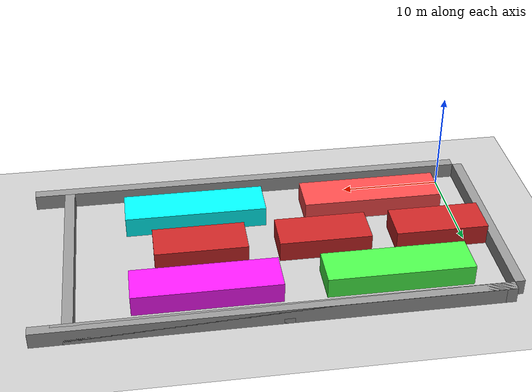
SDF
<sdf version="1.6">
 <world name="default">
  <light name="sun" type="directional">
   <pose>0 0 10 0 -0 0</pose>
   <diffuse>0.8 0.8 0.8 1</diffuse>
   <specular>0.1 0.1 0.1 1</specular>
   <attenuation>
    <range>1000</range>
    <constant>0.9</constant>
    <linear>0.01</linear>
    <quadratic>0.001</quadratic>
   </attenuation>
   <direction>-0.5 0.5 -1</direction>
  </light>
  <model name="ground_plane">
   <static>1</static>
   <link name="link">
    <collision name="collision">
     <geometry><plane><normal>0 0 1</normal><size>100 100</size></plane></geometry>
     <surface><friction><ode><mu>100</mu><mu2>50</mu2></ode></friction></surface>
    </collision>
    <visual name="visual">
     <cast_shadows>0</cast_shadows>
     <geometry><plane><normal>0 0 1</normal><size>100 100</size></plane></geometry>
     <material>
      <script><uri>file://media/materials/scripts/gazebo.material</uri><name>Gazebo/Grey</name></script>
     </material>
    </visual>
   </link>
  </model>
  <gravity>0 0 -9.8</gravity>
  <magnetic_field>6e-06 2.3e-05 -4.2e-05</magnetic_field>
  <atmosphere type="adiabatic"/>
  <physics name="default_physics" default="0" type="ode">
   <max_step_size>0.001</max_step_size>
   <real_time_factor>1</real_time_factor>
   <real_time_update_rate>1000</real_time_update_rate>
  </physics>
  <scene><ambient>0.4 0.4 0.4 1</ambient><background>0.7 0.7 0.7 1</background><shadows>1</shadows></scene>
  <spherical_coordinates>
   <surface_model>EARTH_WGS84</surface_model>
   <latitude_deg>0</latitude_deg>
   <longitude_deg>0</longitude_deg>
   <elevation>0</elevation>
   <heading_deg>0</heading_deg>
  </spherical_coordinates>
  <model name="garage_ver2_0">
   <link name="link_0">
    <pose>0 10.5 0 0 -0 0</pose>
    <inertial>
     <mass>1</mass>
     <inertia>
      <ixx>0.166667</ixx>
      <ixy>0</ixy>
      <ixz>0</ixz>
      <iyy>0.166667</iyy>
      <iyz>0</iyz>
      <izz>0.166667</izz>
     </inertia>
    </inertial>
    <kinematic>1</kinematic>
    <visual name="ModelPreview_1::link_0::visual_1">
     <geometry><box><size>1 1 1</size></box></geometry>
     <material>
      <lighting>1</lighting>
      <script><uri>file://media/materials/scripts/gazebo.material</uri><name>Gazebo/Grey</name></script>
      <ambient>0.3 0.3 0.3 1</ambient>
      <diffuse>0.7 0.7 0.7 1</diffuse>
      <specular>0.01 0.01 0.01 1</specular>
      <emissive>0 0 0 1</emissive>
      <shader type="vertex"><normal_map>__default__</normal_map></shader>
     </material>
    </visual>
    <visual name="ModelPreview_1::link_0::visual_2">
     <geometry><box><size>40 1 1</size></box></geometry>
     <material>
      <lighting>1</lighting>
      <script><uri>file://media/materials/scripts/gazebo.material</uri><name>Gazebo/Grey</name></script>
      <ambient>0.3 0.3 0.3 1</ambient>
      <diffuse>0.7 0.7 0.7 1</diffuse>
      <specular>0.01 0.01 0.01 1</specular>
      <emissive>0 0 0 1</emissive>
      <shader type="vertex"><normal_map>__default__</normal_map></shader>
     </material>
    </visual>
    <visual name="ModelPreview_1::link_0::visual_3">
     <geometry><box><size>40 1 2.97</size></box></geometry>
     <material>
      <lighting>1</lighting>
      <script><uri>file://media/materials/scripts/gazebo.material</uri><name>Gazebo/Grey</name></script>
      <ambient>0.3 0.3 0.3 1</ambient>
      <diffuse>0.7 0.7 0.7 1</diffuse>
      <specular>0.01 0.01 0.01 1</specular>
      <emissive>0 0 0 1</emissive>
      <shader type="vertex"><normal_map>__default__</normal_map></shader>
     </material>
    </visual>
    <visual name="visual">
     <geometry><box><size>42 1 3</size></box></geometry>
     <material>
      <lighting>1</lighting>
      <script><uri>file://media/materials/scripts/gazebo.material</uri><name>Gazebo/Grey</name></script>
      <ambient>0.3 0.3 0.3 1</ambient>
      <diffuse>0.7 0.7 0.7 1</diffuse>
      <specular>0.01 0.01 0.01 1</specular>
      <emissive>0 0 0 1</emissive>
      <shader type="vertex"><normal_map>__default__</normal_map></shader>
     </material>
    </visual>
    <collision name="collision">
     <geometry><box><size>42 1 3</size></box></geometry>
     <surface>
      <friction>
       <ode><mu>1</mu><mu2>1</mu2><fdir1>0 0 0</fdir1><slip1>0</slip1><slip2>0</slip2></ode>
       <torsional>
        <coefficient>1</coefficient>
        <patch_radius>0</patch_radius>
        <surface_radius>0</surface_radius>
        <use_patch_radius>1</use_patch_radius>
        <ode><slip>0</slip></ode>
       </torsional>
      </friction>
      <bounce><restitution_coefficient>0</restitution_coefficient><threshold>1e+06</threshold></bounce>
      <contact>
       <collide_without_contact>0</collide_without_contact>
       <collide_without_contact_bitmask>1</collide_without_contact_bitmask>
       <collide_bitmask>1</collide_bitmask>
       <ode>
        <soft_cfm>0</soft_cfm>
        <soft_erp>0.2</soft_erp>
        <kp>1e+13</kp>
        <kd>1</kd>
        <max_vel>0.01</max_vel>
        <min_depth>0</min_depth>
       </ode>
       <bullet>
        <split_impulse>1</split_impulse>
        <split_impulse_penetration_threshold>-0.01</split_impulse_penetration_threshold>
        <soft_cfm>0</soft_cfm>
        <soft_erp>0.2</soft_erp>
        <kp>1e+13</kp>
        <kd>1</kd>
       </bullet>
      </contact>
     </surface>
    </collision>
   </link>
   <link name="link_0_clone">
    <pose>1 10.5 0 0 -0 0</pose>
    <inertial>
     <mass>1</mass>
     <inertia>
      <ixx>0.166667</ixx>
      <ixy>0</ixy>
      <ixz>0</ixz>
      <iyy>0.166667</iyy>
      <iyz>0</iyz>
      <izz>0.166667</izz>
     </inertia>
    </inertial>
    <kinematic>1</kinematic>
    <visual name="visual">
     <geometry><box><size>44 1 3</size></box></geometry>
     <material>
      <lighting>1</lighting>
      <script><uri>file://media/materials/scripts/gazebo.material</uri><name>Gazebo/Grey</name></script>
      <ambient>0.3 0.3 0.3 1</ambient>
      <diffuse>0.7 0.7 0.7 1</diffuse>
      <specular>0.01 0.01 0.01 1</specular>
      <emissive>0 0 0 1</emissive>
      <shader type="vertex"><normal_map>__default__</normal_map></shader>
     </material>
    </visual>
    <collision name="collision">
     <geometry><box><size>44 1 3</size></box></geometry>
     <surface>
      <friction>
       <ode><mu>1</mu><mu2>1</mu2><fdir1>0 0 0</fdir1><slip1>0</slip1><slip2>0</slip2></ode>
       <torsional>
        <coefficient>1</coefficient>
        <patch_radius>0</patch_radius>
        <surface_radius>0</surface_radius>
        <use_patch_radius>1</use_patch_radius>
        <ode><slip>0</slip></ode>
       </torsional>
      </friction>
      <bounce><restitution_coefficient>0</restitution_coefficient><threshold>1e+06</threshold></bounce>
      <contact>
       <collide_without_contact>0</collide_without_contact>
       <collide_without_contact_bitmask>1</collide_without_contact_bitmask>
       <collide_bitmask>1</collide_bitmask>
       <ode>
        <soft_cfm>0</soft_cfm>
        <soft_erp>0.2</soft_erp>
        <kp>1e+13</kp>
        <kd>1</kd>
        <max_vel>0.01</max_vel>
        <min_depth>0</min_depth>
       </ode>
       <bullet>
        <split_impulse>1</split_impulse>
        <split_impulse_penetration_threshold>-0.01</split_impulse_penetration_threshold>
        <soft_cfm>0</soft_cfm>
        <soft_erp>0.2</soft_erp>
        <kp>1e+13</kp>
        <kd>1</kd>
       </bullet>
      </contact>
     </surface>
    </collision>
   </link>
   <link name="link_0_clone_clone">
    <pose>1 -10.5 0 0 -0 0</pose>
    <inertial>
     <mass>1</mass>
     <inertia>
      <ixx>0.166667</ixx>
      <ixy>0</ixy>
      <ixz>0</ixz>
      <iyy>0.166667</iyy>
      <iyz>0</iyz>
      <izz>0.166667</izz>
     </inertia>
    </inertial>
    <kinematic>1</kinematic>
    <visual name="visual">
     <geometry><box><size>44 1 3</size></box></geometry>
     <material>
      <lighting>1</lighting>
      <script><uri>file://media/materials/scripts/gazebo.material</uri><name>Gazebo/Grey</name></script>
      <ambient>0.3 0.3 0.3 1</ambient>
      <diffuse>0.7 0.7 0.7 1</diffuse>
      <specular>0.01 0.01 0.01 1</specular>
      <emissive>0 0 0 1</emissive>
      <shader type="vertex"><normal_map>__default__</normal_map></shader>
     </material>
    </visual>
    <collision name="collision">
     <geometry><box><size>44 1 3</size></box></geometry>
     <surface>
      <friction>
       <ode><mu>1</mu><mu2>1</mu2><fdir1>0 0 0</fdir1><slip1>0</slip1><slip2>0</slip2></ode>
       <torsional>
        <coefficient>1</coefficient>
        <patch_radius>0</patch_radius>
        <surface_radius>0</surface_radius>
        <use_patch_radius>1</use_patch_radius>
        <ode><slip>0</slip></ode>
       </torsional>
      </friction>
      <bounce><restitution_coefficient>0</restitution_coefficient><threshold>1e+06</threshold></bounce>
      <contact>
       <collide_without_contact>0</collide_without_contact>
       <collide_without_contact_bitmask>1</collide_without_contact_bitmask>
       <collide_bitmask>1</collide_bitmask>
       <ode>
        <soft_cfm>0</soft_cfm>
        <soft_erp>0.2</soft_erp>
        <kp>1e+13</kp>
        <kd>1</kd>
        <max_vel>0.01</max_vel>
        <min_depth>0</min_depth>
       </ode>
       <bullet>
        <split_impulse>1</split_impulse>
        <split_impulse_penetration_threshold>-0.01</split_impulse_penetration_threshold>
        <soft_cfm>0</soft_cfm>
        <soft_erp>0.2</soft_erp>
        <kp>1e+13</kp>
        <kd>1</kd>
       </bullet>
      </contact>
     </surface>
    </collision>
   </link>
   <link name="link_1_clone_1_clone">
    <pose>-16.5 0 0.5 0 -0 0</pose>
    <inertial>
     <mass>1</mass>
     <inertia>
      <ixx>0.166667</ixx>
      <ixy>0</ixy>
      <ixz>0</ixz>
      <iyy>0.166667</iyy>
      <iyz>0</iyz>
      <izz>0.166667</izz>
     </inertia>
    </inertial>
    <kinematic>1</kinematic>
    <visual name="visual">
     <geometry><box><size>9.09 4 3</size></box></geometry>
     <material>
      <lighting>1</lighting>
      <script><uri>file://media/materials/scripts/gazebo.material</uri><name>Gazebo/Red</name></script>
      <ambient>0 0.3 0 1</ambient>
      <diffuse>0.7 0.7 0.7 1</diffuse>
      <specular>0.01 0.01 0.01 1</specular>
      <emissive>0 0 0 1</emissive>
      <shader type="vertex"><normal_map>__default__</normal_map></shader>
     </material>
    </visual>
    <collision name="collision">
     <geometry><box><size>9 4 3</size></box></geometry>
     <surface>
      <friction>
       <ode><mu>1</mu><mu2>1</mu2><fdir1>0 0 0</fdir1><slip1>0</slip1><slip2>0</slip2></ode>
       <torsional>
        <coefficient>1</coefficient>
        <patch_radius>0</patch_radius>
        <surface_radius>0</surface_radius>
        <use_patch_radius>1</use_patch_radius>
        <ode><slip>0</slip></ode>
       </torsional>
      </friction>
      <bounce><restitution_coefficient>0</restitution_coefficient><threshold>1e+06</threshold></bounce>
      <contact>
       <collide_without_contact>0</collide_without_contact>
       <collide_without_contact_bitmask>1</collide_without_contact_bitmask>
       <collide_bitmask>1</collide_bitmask>
       <ode>
        <soft_cfm>0</soft_cfm>
        <soft_erp>0.2</soft_erp>
        <kp>1e+13</kp>
        <kd>1</kd>
        <max_vel>0.01</max_vel>
        <min_depth>0</min_depth>
       </ode>
       <bullet>
        <split_impulse>1</split_impulse>
        <split_impulse_penetration_threshold>-0.01</split_impulse_penetration_threshold>
        <soft_cfm>0</soft_cfm>
        <soft_erp>0.2</soft_erp>
        <kp>1e+13</kp>
        <kd>1</kd>
       </bullet>
      </contact>
     </surface>
    </collision>
   </link>
   <link name="link_1_clone_1_clone_1_clone_0_clone_clone_1_clone">
    <pose>-5 0 0.5 0 -0 0</pose>
    <inertial>
     <mass>1</mass>
     <inertia>
      <ixx>0.166667</ixx>
      <ixy>0</ixy>
      <ixz>0</ixz>
      <iyy>0.166667</iyy>
      <iyz>0</iyz>
      <izz>0.166667</izz>
     </inertia>
    </inertial>
    <kinematic>1</kinematic>
    <visual name="visual">
     <geometry><box><size>9 4 3</size></box></geometry>
     <material>
      <lighting>1</lighting>
      <script><uri>file://media/materials/scripts/gazebo.material</uri><name>Gazebo/Red</name></script>
      <ambient>0.1 0 1 0.5</ambient>
      <diffuse>0.7 0.7 0.7 1</diffuse>
      <specular>0.01 0.01 0.01 1</specular>
      <emissive>0 0 0 1</emissive>
      <shader type="vertex"><normal_map>__default__</normal_map></shader>
     </material>
    </visual>
    <collision name="collision">
     <geometry><box><size>9 4 3</size></box></geometry>
     <surface>
      <friction>
       <ode><mu>1</mu><mu2>1</mu2><fdir1>0 0 0</fdir1><slip1>0</slip1><slip2>0</slip2></ode>
       <torsional>
        <coefficient>1</coefficient>
        <patch_radius>0</patch_radius>
        <surface_radius>0</surface_radius>
        <use_patch_radius>1</use_patch_radius>
        <ode><slip>0</slip></ode>
       </torsional>
      </friction>
      <bounce><restitution_coefficient>0</restitution_coefficient><threshold>1e+06</threshold></bounce>
      <contact>
       <collide_without_contact>0</collide_without_contact>
       <collide_without_contact_bitmask>1</collide_without_contact_bitmask>
       <collide_bitmask>1</collide_bitmask>
       <ode>
        <soft_cfm>0</soft_cfm>
        <soft_erp>0.2</soft_erp>
        <kp>1e+13</kp>
        <kd>1</kd>
        <max_vel>0.01</max_vel>
        <min_depth>0</min_depth>
       </ode>
       <bullet>
        <split_impulse>1</split_impulse>
        <split_impulse_penetration_threshold>-0.01</split_impulse_penetration_threshold>
        <soft_cfm>0</soft_cfm>
        <soft_erp>0.2</soft_erp>
        <kp>1e+13</kp>
        <kd>1</kd>
       </bullet>
      </contact>
     </surface>
    </collision>
   </link>
   <link name="link_1_clone_1_clone_1_clone_0_clone_clone_1_clone_clone">
    <pose>7 0 0.5 0 -0 0</pose>
    <inertial>
     <mass>1</mass>
     <inertia>
      <ixx>0.166667</ixx>
      <ixy>0</ixy>
      <ixz>0</ixz>
      <iyy>0.166667</iyy>
      <iyz>0</iyz>
      <izz>0.166667</izz>
     </inertia>
    </inertial>
    <kinematic>1</kinematic>
    <visual name="visual">
     <geometry><box><size>9 4 3</size></box></geometry>
     <material>
      <lighting>1</lighting>
      <script><uri>file://media/materials/scripts/gazebo.material</uri><name>Gazebo/Red</name></script>
      <ambient>0 1 0 1</ambient>
      <diffuse>0.7 0.7 0.7 1</diffuse>
      <specular>0.01 0.01 0.01 1</specular>
      <emissive>0 0 0 1</emissive>
      <shader type="vertex"><normal_map>__default__</normal_map></shader>
     </material>
    </visual>
    <collision name="collision">
     <geometry><box><size>9 4 3</size></box></geometry>
     <surface>
      <friction>
       <ode><mu>1</mu><mu2>1</mu2><fdir1>0 0 0</fdir1><slip1>0</slip1><slip2>0</slip2></ode>
       <torsional>
        <coefficient>1</coefficient>
        <patch_radius>0</patch_radius>
        <surface_radius>0</surface_radius>
        <use_patch_radius>1</use_patch_radius>
        <ode><slip>0</slip></ode>
       </torsional>
      </friction>
      <bounce><restitution_coefficient>0</restitution_coefficient><threshold>1e+06</threshold></bounce>
      <contact>
       <collide_without_contact>0</collide_without_contact>
       <collide_without_contact_bitmask>1</collide_without_contact_bitmask>
       <collide_bitmask>1</collide_bitmask>
       <ode>
        <soft_cfm>0</soft_cfm>
        <soft_erp>0.2</soft_erp>
        <kp>1e+13</kp>
        <kd>1</kd>
        <max_vel>0.01</max_vel>
        <min_depth>0</min_depth>
       </ode>
       <bullet>
        <split_impulse>1</split_impulse>
        <split_impulse_penetration_threshold>-0.01</split_impulse_penetration_threshold>
        <soft_cfm>0</soft_cfm>
        <soft_erp>0.2</soft_erp>
        <kp>1e+13</kp>
        <kd>1</kd>
       </bullet>
      </contact>
     </surface>
    </collision>
   </link>
   <link name="link_3">
    <pose>-11 -6 0.5 0 -0 0</pose>
    <inertial>
     <mass>1</mass>
     <inertia>
      <ixx>0.166667</ixx>
      <ixy>0</ixy>
      <ixz>0</ixz>
      <iyy>0.166667</iyy>
      <iyz>0</iyz>
      <izz>0.166667</izz>
     </inertia>
    </inertial>
    <kinematic>1</kinematic>
    <visual name="ModelPreview_1::link_3::visual_1">
     <geometry><box><size>1 1 1</size></box></geometry>
     <material>
      <lighting>1</lighting>
      <script><uri>file://media/materials/scripts/gazebo.material</uri><name>Gazebo/Grey</name></script>
      <ambient>0.3 0.3 0.3 1</ambient>
      <diffuse>0.7 0.7 0.7 1</diffuse>
      <specular>0.01 0.01 0.01 1</specular>
      <emissive>0 0 0 1</emissive>
      <shader type="vertex"><normal_map>__default__</normal_map></shader>
     </material>
    </visual>
    <visual name="visual">
     <geometry><box><size>14 4 3</size></box></geometry>
     <material>
      <lighting>1</lighting>
      <script><uri>file://media/materials/scripts/gazebo.material</uri><name>Gazebo/Grey</name></script>
      <ambient>1 0.3 0.3 1</ambient>
      <diffuse>0.7 0.7 0.7 1</diffuse>
      <specular>0.01 0.01 0.01 1</specular>
      <emissive>0 0 0 1</emissive>
      <shader type="vertex"><normal_map>__default__</normal_map></shader>
     </material>
    </visual>
    <collision name="collision">
     <geometry><box><size>14 4 3</size></box></geometry>
     <surface>
      <friction>
       <ode><mu>1</mu><mu2>1</mu2><fdir1>0 0 0</fdir1><slip1>0</slip1><slip2>0</slip2></ode>
       <torsional>
        <coefficient>1</coefficient>
        <patch_radius>0</patch_radius>
        <surface_radius>0</surface_radius>
        <use_patch_radius>1</use_patch_radius>
        <ode><slip>0</slip></ode>
       </torsional>
      </friction>
      <bounce><restitution_coefficient>0</restitution_coefficient><threshold>1e+06</threshold></bounce>
      <contact>
       <collide_without_contact>0</collide_without_contact>
       <collide_without_contact_bitmask>1</collide_without_contact_bitmask>
       <collide_bitmask>1</collide_bitmask>
       <ode>
        <soft_cfm>0</soft_cfm>
        <soft_erp>0.2</soft_erp>
        <kp>1e+13</kp>
        <kd>1</kd>
        <max_vel>0.01</max_vel>
        <min_depth>0</min_depth>
       </ode>
       <bullet>
        <split_impulse>1</split_impulse>
        <split_impulse_penetration_threshold>-0.01</split_impulse_penetration_threshold>
        <soft_cfm>0</soft_cfm>
        <soft_erp>0.2</soft_erp>
        <kp>1e+13</kp>
        <kd>1</kd>
       </bullet>
      </contact>
     </surface>
    </collision>
   </link>
   <link name="link_3_clone">
    <pose>-11 6 0.5 0 -0 0</pose>
    <inertial>
     <mass>1</mass>
     <inertia>
      <ixx>0.166667</ixx>
      <ixy>0</ixy>
      <ixz>0</ixz>
      <iyy>0.166667</iyy>
      <iyz>0</iyz>
      <izz>0.166667</izz>
     </inertia>
    </inertial>
    <kinematic>1</kinematic>
    <visual name="visual">
     <geometry><box><size>14 4 3</size></box></geometry>
     <material>
      <lighting>1</lighting>
      <script><uri>file://media/materials/scripts/gazebo.material</uri><name>Gazebo/Grey</name></script>
      <ambient>0.3 1 0.3 1</ambient>
      <diffuse>0.7 0.7 0.7 1</diffuse>
      <specular>0.01 0.01 0.01 1</specular>
      <emissive>0 0 0 1</emissive>
      <shader type="vertex"><normal_map>__default__</normal_map></shader>
     </material>
    </visual>
    <collision name="collision">
     <geometry><box><size>14 4 3</size></box></geometry>
     <surface>
      <friction>
       <ode><mu>1</mu><mu2>1</mu2><fdir1>0 0 0</fdir1><slip1>0</slip1><slip2>0</slip2></ode>
       <torsional>
        <coefficient>1</coefficient>
        <patch_radius>0</patch_radius>
        <surface_radius>0</surface_radius>
        <use_patch_radius>1</use_patch_radius>
        <ode><slip>0</slip></ode>
       </torsional>
      </friction>
      <bounce><restitution_coefficient>0</restitution_coefficient><threshold>1e+06</threshold></bounce>
      <contact>
       <collide_without_contact>0</collide_without_contact>
       <collide_without_contact_bitmask>1</collide_without_contact_bitmask>
       <collide_bitmask>1</collide_bitmask>
       <ode>
        <soft_cfm>0</soft_cfm>
        <soft_erp>0.2</soft_erp>
        <kp>1e+13</kp>
        <kd>1</kd>
        <max_vel>0.01</max_vel>
        <min_depth>0</min_depth>
       </ode>
       <bullet>
        <split_impulse>1</split_impulse>
        <split_impulse_penetration_threshold>-0.01</split_impulse_penetration_threshold>
        <soft_cfm>0</soft_cfm>
        <soft_erp>0.2</soft_erp>
        <kp>1e+13</kp>
        <kd>1</kd>
       </bullet>
      </contact>
     </surface>
    </collision>
   </link>
   <link name="link_3_clone_clone">
    <pose>7 6 0.5 0 -0 0</pose>
    <inertial>
     <mass>1</mass>
     <inertia>
      <ixx>0.166667</ixx>
      <ixy>0</ixy>
      <ixz>0</ixz>
      <iyy>0.166667</iyy>
      <iyz>0</iyz>
      <izz>0.166667</izz>
     </inertia>
    </inertial>
    <kinematic>1</kinematic>
    <visual name="visual">
     <geometry><box><size>14 4 3</size></box></geometry>
     <material>
      <lighting>1</lighting>
      <script><uri>file://media/materials/scripts/gazebo.material</uri><name>Gazebo/Grey</name></script>
      <ambient>1 0.1 1 1</ambient>
      <diffuse>0.7 0.7 0.7 1</diffuse>
      <specular>0.01 0.01 0.01 1</specular>
      <emissive>0 0 0 1</emissive>
      <shader type="vertex"><normal_map>__default__</normal_map></shader>
     </material>
    </visual>
    <collision name="collision">
     <geometry><box><size>14 4 3</size></box></geometry>
     <surface>
      <friction>
       <ode><mu>1</mu><mu2>1</mu2><fdir1>0 0 0</fdir1><slip1>0</slip1><slip2>0</slip2></ode>
       <torsional>
        <coefficient>1</coefficient>
        <patch_radius>0</patch_radius>
        <surface_radius>0</surface_radius>
        <use_patch_radius>1</use_patch_radius>
        <ode><slip>0</slip></ode>
       </torsional>
      </friction>
      <bounce><restitution_coefficient>0</restitution_coefficient><threshold>1e+06</threshold></bounce>
      <contact>
       <collide_without_contact>0</collide_without_contact>
       <collide_without_contact_bitmask>1</collide_without_contact_bitmask>
       <collide_bitmask>1</collide_bitmask>
       <ode>
        <soft_cfm>0</soft_cfm>
        <soft_erp>0.2</soft_erp>
        <kp>1e+13</kp>
        <kd>1</kd>
        <max_vel>0.01</max_vel>
        <min_depth>0</min_depth>
       </ode>
       <bullet>
        <split_impulse>1</split_impulse>
        <split_impulse_penetration_threshold>-0.01</split_impulse_penetration_threshold>
        <soft_cfm>0</soft_cfm>
        <soft_erp>0.2</soft_erp>
        <kp>1e+13</kp>
        <kd>1</kd>
       </bullet>
      </contact>
     </surface>
    </collision>
   </link>
   <link name="link_3_clone_clone_clone">
    <pose>7 -6 0.5 0 -0 0</pose>
    <inertial>
     <mass>1</mass>
     <inertia>
      <ixx>0.166667</ixx>
      <ixy>0</ixy>
      <ixz>0</ixz>
      <iyy>0.166667</iyy>
      <iyz>0</iyz>
      <izz>0.166667</izz>
     </inertia>
    </inertial>
    <kinematic>1</kinematic>
    <visual name="visual">
     <geometry><box><size>14 4 3</size></box></geometry>
     <material>
      <lighting>1</lighting>
      <script><uri>file://media/materials/scripts/gazebo.material</uri><name>Gazebo/Grey</name></script>
      <ambient>0 1 1 0</ambient>
      <diffuse>0.7 0.7 0.7 1</diffuse>
      <specular>0.01 0.01 0.01 1</specular>
      <emissive>0 0 0 1</emissive>
      <shader type="vertex"><normal_map>__default__</normal_map></shader>
     </material>
    </visual>
    <collision name="collision">
     <geometry><box><size>14 4 3</size></box></geometry>
     <surface>
      <friction>
       <ode><mu>1</mu><mu2>1</mu2><fdir1>0 0 0</fdir1><slip1>0</slip1><slip2>0</slip2></ode>
       <torsional>
        <coefficient>1</coefficient>
        <patch_radius>0</patch_radius>
        <surface_radius>0</surface_radius>
        <use_patch_radius>1</use_patch_radius>
        <ode><slip>0</slip></ode>
       </torsional>
      </friction>
      <bounce><restitution_coefficient>0</restitution_coefficient><threshold>1e+06</threshold></bounce>
      <contact>
       <collide_without_contact>0</collide_without_contact>
       <collide_without_contact_bitmask>1</collide_without_contact_bitmask>
       <collide_bitmask>1</collide_bitmask>
       <ode>
        <soft_cfm>0</soft_cfm>
        <soft_erp>0.2</soft_erp>
        <kp>1e+13</kp>
        <kd>1</kd>
        <max_vel>0.01</max_vel>
        <min_depth>0</min_depth>
       </ode>
       <bullet>
        <split_impulse>1</split_impulse>
        <split_impulse_penetration_threshold>-0.01</split_impulse_penetration_threshold>
        <soft_cfm>0</soft_cfm>
        <soft_erp>0.2</soft_erp>
        <kp>1e+13</kp>
        <kd>1</kd>
       </bullet>
      </contact>
     </surface>
    </collision>
   </link>
   <link name="link_clone">
    <pose>-21.5 0 0 0 -0 0</pose>
    <inertial>
     <mass>1</mass>
     <inertia>
      <ixx>0.166667</ixx>
      <ixy>0</ixy>
      <ixz>0</ixz>
      <iyy>0.166667</iyy>
      <iyz>0</iyz>
      <izz>0.166667</izz>
     </inertia>
    </inertial>
    <kinematic>1</kinematic>
    <visual name="visual">
     <geometry><box><size>1 20 3</size></box></geometry>
     <material>
      <script><name>Gazebo/Grey</name><uri>file://media/materials/scripts/gazebo.material</uri></script>
      <ambient>0.3 0.3 0.3 1</ambient>
      <diffuse>0.7 0.7 0.7 1</diffuse>
      <specular>0.01 0.01 0.01 1</specular>
      <emissive>0 0 0 1</emissive>
      <shader type="vertex"><normal_map>__default__</normal_map></shader>
     </material>
    </visual>
    <collision name="collision">
     <geometry><box><size>1 20 3</size></box></geometry>
     <surface>
      <friction>
       <ode><mu>1</mu><mu2>1</mu2><fdir1>0 0 0</fdir1><slip1>0</slip1><slip2>0</slip2></ode>
       <torsional>
        <coefficient>1</coefficient>
        <patch_radius>0</patch_radius>
        <surface_radius>0</surface_radius>
        <use_patch_radius>1</use_patch_radius>
        <ode><slip>0</slip></ode>
       </torsional>
      </friction>
      <bounce><restitution_coefficient>0</restitution_coefficient><threshold>1e+06</threshold></bounce>
      <contact>
       <collide_without_contact>0</collide_without_contact>
       <collide_without_contact_bitmask>1</collide_without_contact_bitmask>
       <collide_bitmask>1</collide_bitmask>
       <ode>
        <soft_cfm>0</soft_cfm>
        <soft_erp>0.2</soft_erp>
        <kp>1e+13</kp>
        <kd>1</kd>
        <max_vel>0.01</max_vel>
        <min_depth>0</min_depth>
       </ode>
       <bullet>
        <split_impulse>1</split_impulse>
        <split_impulse_penetration_threshold>-0.01</split_impulse_penetration_threshold>
        <soft_cfm>0</soft_cfm>
        <soft_erp>0.2</soft_erp>
        <kp>1e+13</kp>
        <kd>1</kd>
       </bullet>
      </contact>
     </surface>
    </collision>
   </link>
   <link name="link_clone_clone">
    <pose>19.5 0 0 0 -0 0</pose>
    <inertial>
     <mass>1</mass>
     <inertia>
      <ixx>0.166667</ixx>
      <ixy>0</ixy>
      <ixz>0</ixz>
      <iyy>0.166667</iyy>
      <iyz>0</iyz>
      <izz>0.166667</izz>
     </inertia>
    </inertial>
    <kinematic>1</kinematic>
    <visual name="visual">
     <geometry><box><size>1 20 3</size></box></geometry>
     <material>
      <script><name>Gazebo/Grey</name><uri>file://media/materials/scripts/gazebo.material</uri></script>
      <ambient>0.3 0.3 0.3 1</ambient>
      <diffuse>0.7 0.7 0.7 1</diffuse>
      <specular>0.01 0.01 0.01 1</specular>
      <emissive>0 0 0 1</emissive>
      <shader type="vertex"><normal_map>__default__</normal_map></shader>
     </material>
    </visual>
    <collision name="collision">
     <geometry><box><size>1 20 3</size></box></geometry>
     <surface>
      <friction>
       <ode><mu>1</mu><mu2>1</mu2><fdir1>0 0 0</fdir1><slip1>0</slip1><slip2>0</slip2></ode>
       <torsional>
        <coefficient>1</coefficient>
        <patch_radius>0</patch_radius>
        <surface_radius>0</surface_radius>
        <use_patch_radius>1</use_patch_radius>
        <ode><slip>0</slip></ode>
       </torsional>
      </friction>
      <bounce><restitution_coefficient>0</restitution_coefficient><threshold>1e+06</threshold></bounce>
      <contact>
       <collide_without_contact>0</collide_without_contact>
       <collide_without_contact_bitmask>1</collide_without_contact_bitmask>
       <collide_bitmask>1</collide_bitmask>
       <ode>
        <soft_cfm>0</soft_cfm>
        <soft_erp>0.2</soft_erp>
        <kp>1e+13</kp>
        <kd>1</kd>
        <max_vel>0.01</max_vel>
        <min_depth>0</min_depth>
       </ode>
       <bullet>
        <split_impulse>1</split_impulse>
        <split_impulse_penetration_threshold>-0.01</split_impulse_penetration_threshold>
        <soft_cfm>0</soft_cfm>
        <soft_erp>0.2</soft_erp>
        <kp>1e+13</kp>
        <kd>1</kd>
       </bullet>
      </contact>
     </surface>
    </collision>
   </link>
   <static>0</static>
   <pose>19 9 0 0 -0 0</pose>
  </model>
 </world>
</sdf>
